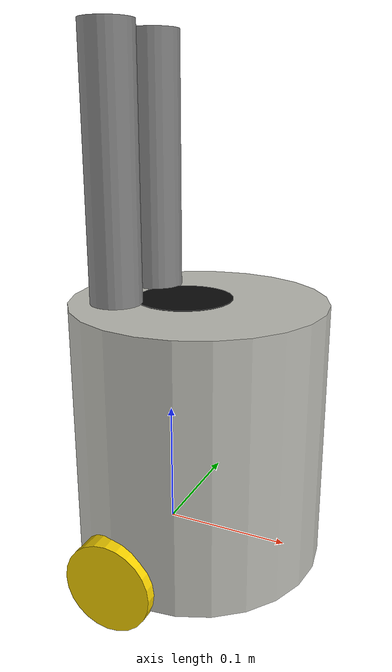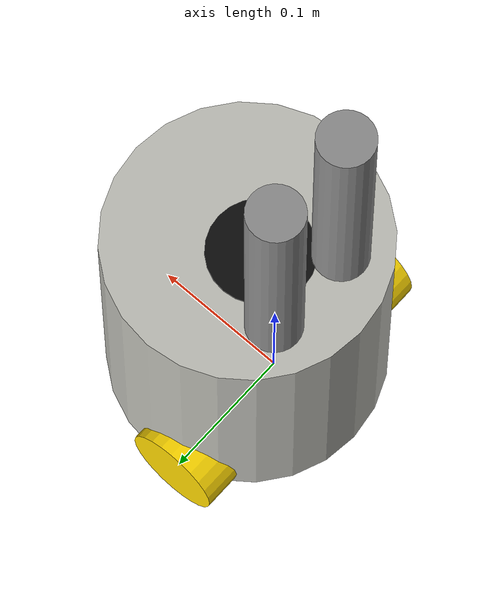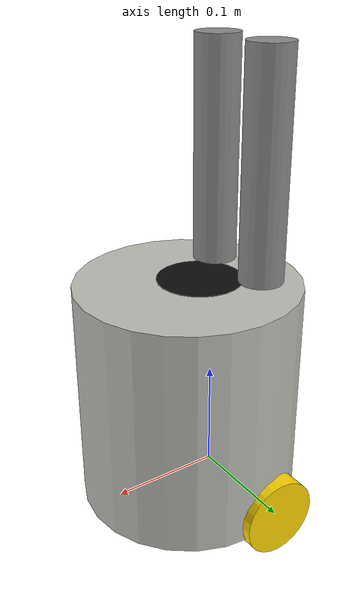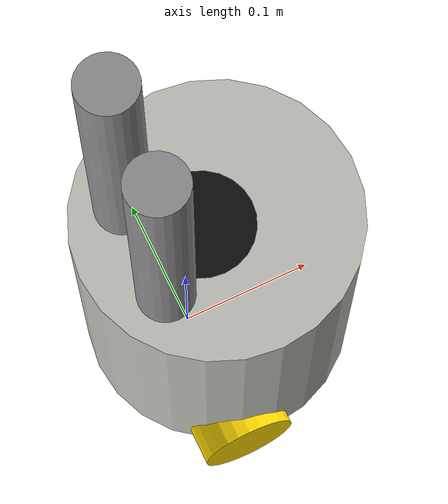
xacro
<?xml version='1.0' encoding='utf-8'?>
<robot name="amr_sim_description" xmlns:xacro="http://www.ros.org/wiki/xacro">

  <xacro:property name="body_radius" value="0.10" />
  <xacro:property name="body_height" value="0.21" />
  <xacro:property name="body_x" value="0.025" />
  <xacro:property name="body_z" value="0.0906" />

  <xacro:property name="wheel_radius" value="0.035" />
  <xacro:property name="wheel_width" value="0.04" />
  <xacro:property name="wheel_y" value="0.0875" />

  <xacro:property name="caster_radius" value="0.012" />
  <xacro:property name="antenna_radius" value="0.02" />
  <xacro:property name="antenna_height" value="0.21" />

  <material name="body_gray">
    <color rgba="0.75 0.75 0.72 1.0" />
  </material>
  <material name="wheel_yellow">
    <color rgba="1.0 0.85 0.0 1.0" />
  </material>
  <material name="rubber_dark">
    <color rgba="0.05 0.05 0.05 1.0" />
  </material>
  <material name="antenna_gray">
    <color rgba="0.55 0.55 0.55 1.0" />
  </material>
  <material name="sensor_blue">
    <color rgba="0.25 0.55 0.9 1.0" />
  </material>

  <xacro:macro name="vertical_cylinder_inertial" params="mass radius height xyz">
    <inertial>
      <origin xyz="${xyz}" rpy="0 0 0" />
      <mass value="${mass}" />
      <inertia
        ixx="${mass * (3.0*radius*radius + height*height) / 12.0}" ixy="0" ixz="0"
        iyy="${mass * (3.0*radius*radius + height*height) / 12.0}" iyz="0"
        izz="${mass * radius*radius / 2.0}" />
    </inertial>
  </xacro:macro>

  <xacro:macro name="wheel_inertial" params="mass radius width">
    <inertial>
      <origin xyz="0 0 0" rpy="0 0 0" />
      <mass value="${mass}" />
      <inertia
        ixx="${mass * (3.0*radius*radius + width*width) / 12.0}" ixy="0" ixz="0"
        iyy="${mass * radius*radius / 2.0}" iyz="0"
        izz="${mass * (3.0*radius*radius + width*width) / 12.0}" />
    </inertial>
  </xacro:macro>

  <xacro:macro name="sphere_inertial" params="mass radius">
    <inertial>
      <origin xyz="0 0 0" rpy="0 0 0" />
      <mass value="${mass}" />
      <inertia
        ixx="${2.0 * mass * radius*radius / 5.0}" ixy="0" ixz="0"
        iyy="${2.0 * mass * radius*radius / 5.0}" iyz="0"
        izz="${2.0 * mass * radius*radius / 5.0}" />
    </inertial>
  </xacro:macro>

  <link name="base_link" />

  <link name="chassis_link">
    <xacro:vertical_cylinder_inertial mass="1.5" radius="${body_radius}" height="${body_height}" xyz="${body_x} 0 ${body_z}" />
    <visual>
      <origin xyz="${body_x} 0 ${body_z}" rpy="0 0 0" />
      <geometry>
        <cylinder radius="${body_radius}" length="${body_height}" />
      </geometry>
      <material name="body_gray" />
    </visual>
    <collision>
      <origin xyz="${body_x} 0 ${body_z}" rpy="0 0 0" />
      <geometry>
        <cylinder radius="${body_radius}" length="${body_height}" />
      </geometry>
    </collision>
  </link>

  <link name="left_wheel_link">
    <xacro:wheel_inertial mass="0.18" radius="${wheel_radius}" width="${wheel_width}" />
    <visual>
      <origin xyz="0 0 0" rpy="1.57079633 0 0" />
      <geometry>
        <cylinder radius="${wheel_radius}" length="${wheel_width}" />
      </geometry>
      <material name="wheel_yellow" />
    </visual>
    <collision>
      <origin xyz="0 0 0" rpy="1.57079633 0 0" />
      <geometry>
        <cylinder radius="${wheel_radius}" length="${wheel_width}" />
      </geometry>
    </collision>
  </link>

  <link name="right_wheel_link">
    <xacro:wheel_inertial mass="0.18" radius="${wheel_radius}" width="${wheel_width}" />
    <visual>
      <origin xyz="0 0 0" rpy="1.57079633 0 0" />
      <geometry>
        <cylinder radius="${wheel_radius}" length="${wheel_width}" />
      </geometry>
      <material name="wheel_yellow" />
    </visual>
    <collision>
      <origin xyz="0 0 0" rpy="1.57079633 0 0" />
      <geometry>
        <cylinder radius="${wheel_radius}" length="${wheel_width}" />
      </geometry>
    </collision>
  </link>

  <link name="right_caster_link">
    <xacro:sphere_inertial mass="0.05" radius="${caster_radius}" />
    <visual>
      <origin xyz="0 0 0" rpy="0 0 0" />
      <geometry>
        <sphere radius="${caster_radius}" />
      </geometry>
      <material name="rubber_dark" />
    </visual>
    <collision>
      <origin xyz="0 0 -0.0045" rpy="0 0 0" />
      <geometry>
        <sphere radius="${caster_radius}" />
      </geometry>
    </collision>
  </link>

  <link name="left_caster_link">
    <xacro:sphere_inertial mass="0.05" radius="${caster_radius}" />
    <visual>
      <origin xyz="0 0 0" rpy="0 0 0" />
      <geometry>
        <sphere radius="${caster_radius}" />
      </geometry>
      <material name="rubber_dark" />
    </visual>
    <collision>
      <origin xyz="0 0 -0.0045" rpy="0 0 0" />
      <geometry>
        <sphere radius="${caster_radius}" />
      </geometry>
    </collision>
  </link>

  <link name="lidar_link">
    <inertial>
      <origin xyz="0 0 0" rpy="0 0 0" />
      <mass value="0.17" />
      <inertia ixx="0.0001" ixy="0" ixz="0" iyy="0.0001" iyz="0" izz="0.0001" />
    </inertial>
    <visual>
      <origin xyz="0 0 0" rpy="0 0 0" />
      <geometry>
        <cylinder radius="0.038" length="0.04" />
      </geometry>
      <material name="rubber_dark" />
    </visual>
  </link>

  <link name="imu_link">
    <inertial>
      <origin xyz="0 0 0" rpy="0 0 0" />
      <mass value="0.02" />
      <inertia ixx="0.00001" ixy="0" ixz="0" iyy="0.00001" iyz="0" izz="0.00001" />
    </inertial>
    <visual>
      <origin xyz="0 0 0" rpy="0 0 0" />
      <geometry>
        <box size="0.035 0.025 0.008" />
      </geometry>
      <material name="sensor_blue" />
    </visual>
  </link>

  <link name="antenna_link">
    <visual>
      <origin xyz="0 0.0336 0.075" rpy="0 0 0" />
      <geometry>
        <cylinder radius="${antenna_radius}" length="${antenna_height}" />
      </geometry>
      <material name="antenna_gray" />
    </visual>
    <visual>
      <origin xyz="0 -0.0336 0.075" rpy="0 0 0" />
      <geometry>
        <cylinder radius="${antenna_radius}" length="${antenna_height}" />
      </geometry>
      <material name="antenna_gray" />
    </visual>
    <collision name="left_antenna_collision">
      <origin xyz="0 0.0336 0.075" rpy="0 0 0" />
      <geometry>
        <cylinder radius="${antenna_radius}" length="${antenna_height}" />
      </geometry>
    </collision>
    <collision name="right_antenna_collision">
      <origin xyz="0 -0.0336 0.075" rpy="0 0 0" />
      <geometry>
        <cylinder radius="${antenna_radius}" length="${antenna_height}" />
      </geometry>
    </collision>
  </link>

  <joint name="base_link_to_chassis" type="fixed">
    <origin xyz="0 0 0" rpy="0 0 0" />
    <parent link="base_link" />
    <child link="chassis_link" />
  </joint>

  <joint name="left_wheel_joint" type="continuous">
    <origin xyz="0 ${wheel_y} 0" rpy="0 0 0" />
    <axis xyz="0 1 0" />
    <dynamics damping="0.1" friction="0.03" />
    <parent link="base_link" />
    <child link="left_wheel_link" />
  </joint>

  <joint name="right_wheel_joint" type="continuous">
    <origin xyz="0 ${-wheel_y} 0" rpy="0 0 0" />
    <axis xyz="0 1 0" />
    <dynamics damping="0.1" friction="0.03" />
    <parent link="base_link" />
    <child link="right_wheel_link" />
  </joint>

  <joint name="base_link_to_right_caster" type="fixed">
    <origin xyz="0.0852169927 -0.000901843 -0.0183911429" rpy="0 0 0" />
    <parent link="base_link" />
    <child link="right_caster_link" />
  </joint>

  <joint name="base_link_to_left_caster" type="fixed">
    <origin xyz="-0.0397830073 -0.000901843 -0.0183911429" rpy="0 0 0" />
    <parent link="base_link" />
    <child link="left_caster_link" />
  </joint>

  <joint name="base_link_to_lidar" type="fixed">
    <origin xyz="0.0126386 0.0002054 0.17618784" rpy="0 0 0" />
    <parent link="base_link" />
    <child link="lidar_link" />
  </joint>

  <joint name="base_link_to_imu" type="fixed">
    <origin xyz="0.0305993 -1.84695904e-13 0.11675" rpy="0 0 0" />
    <parent link="base_link" />
    <child link="imu_link" />
  </joint>

  <joint name="base_link_to_antenna" type="fixed">
    <origin xyz="-0.0282686178 -0.000126309031 0.213981697" rpy="0 0 0" />
    <parent link="base_link" />
    <child link="antenna_link" />
  </joint>
</robot>
